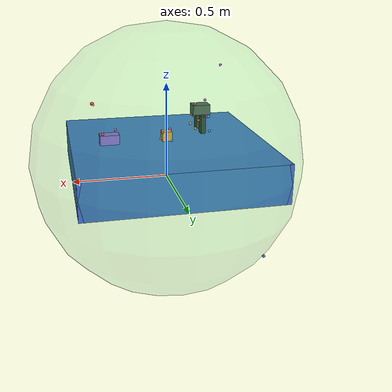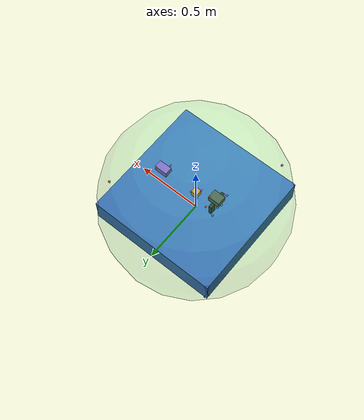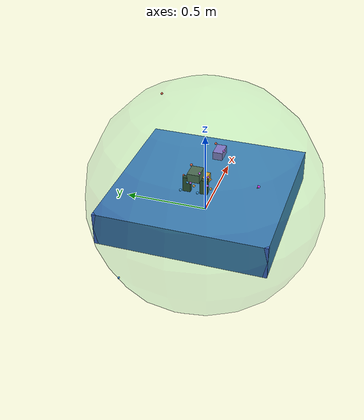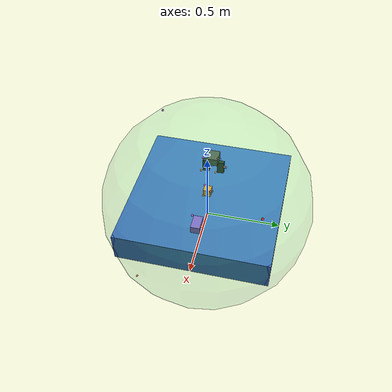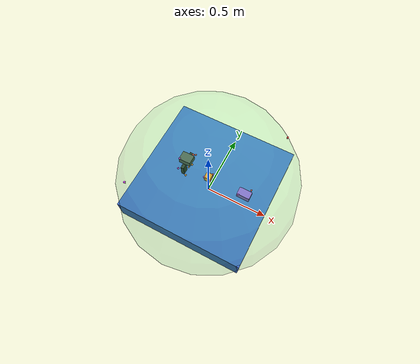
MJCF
<mujoco model="phase1_slide">
  <compiler angle="degree" autolimits="true"/>
  <option timestep="0.001" gravity="0 0 -9.81" integrator="implicitfast" solver="CG"
          cone="elliptic" impratio="12" tolerance="1e-7" iterations="200" noslip_iterations="2"/>
  <default>
    <joint damping="0.30" armature="0.001"/>
    <geom solref="0.025 1.2" solimp="0.94 0.997 0.0008" condim="3" friction="0.45 0.02 0.005"/>
    <default class="anchor_viz">
      <geom contype="0" conaffinity="0" group="1"/>
      <site size="0.007" group="2"/>
    </default>
  </default>

  <visual>
    <headlight diffuse="0.8 0.8 0.8" ambient="0.2 0.2 0.2" specular="0.25 0.25 0.25"/>
    <rgba haze="0.15 0.25 0.35 1"/>
  </visual>

  <worldbody>
    <light pos="0.5 -0.5 1.5" dir="-0.3 0.3 -1"/>
    <camera name="main" pos="1.1 -0.9 0.55" xyaxes="0.75 0.66 0 -0.28 0.32 0.90"/>

    <body name="base" pos="0 0 0.1">
      <geom name="base_geom" type="box" size="0.5 0.5 0.1" rgba="0.24 0.42 0.78 1"
            friction="0.45 0.02 0.005"/>
      <!-- R=0.714143 hx,hy,hz=0.5,0.5,0.1 -->
      <geom name="base_anchor_sphere" class="anchor_viz" type="sphere" size="0.714143"
            rgba="0.25 0.85 0.40 0.14"/>
      <site name="base_anchor_0" class="anchor_viz" pos="0.412311 0.412311 0.412311" rgba="1 0.25 0.25 1"/>
      <site name="base_anchor_1" class="anchor_viz" pos="0.412311 -0.412311 -0.412311" rgba="1 0.55 0.25 1"/>
      <site name="base_anchor_2" class="anchor_viz" pos="-0.412311 0.412311 -0.412311" rgba="0.25 0.55 1 1"/>
      <site name="base_anchor_3" class="anchor_viz" pos="-0.412311 -0.412311 0.412311" rgba="0.85 0.25 1 1"/>
      <geom name="base_anchor_edge_01" class="anchor_viz" type="capsule" size="0.003"
            fromto="0.412311 0.412311 0.412311 0.412311 -0.412311 -0.412311" rgba="0.95 0.95 0.2 0.55"/>
      <geom name="base_anchor_edge_02" class="anchor_viz" type="capsule" size="0.003"
            fromto="0.412311 0.412311 0.412311 -0.412311 0.412311 -0.412311" rgba="0.95 0.95 0.2 0.55"/>
      <geom name="base_anchor_edge_03" class="anchor_viz" type="capsule" size="0.003"
            fromto="0.412311 0.412311 0.412311 -0.412311 -0.412311 0.412311" rgba="0.95 0.95 0.2 0.55"/>
      <geom name="base_anchor_edge_12" class="anchor_viz" type="capsule" size="0.003"
            fromto="0.412311 -0.412311 -0.412311 -0.412311 0.412311 -0.412311" rgba="0.95 0.95 0.2 0.55"/>
      <geom name="base_anchor_edge_13" class="anchor_viz" type="capsule" size="0.003"
            fromto="0.412311 -0.412311 -0.412311 -0.412311 -0.412311 0.412311" rgba="0.95 0.95 0.2 0.55"/>
      <geom name="base_anchor_edge_23" class="anchor_viz" type="capsule" size="0.003"
            fromto="-0.412311 0.412311 -0.412311 -0.412311 -0.412311 0.412311" rgba="0.95 0.95 0.2 0.55"/>
    </body>

    <body name="cube" pos="0 0 0.225">
      <freejoint name="cube_free"/>
      <geom name="cube_geom" type="box" size="0.025 0.025 0.025" mass="0.12"
            rgba="0.92 0.55 0.15 1" friction="0.50 0.03 0.008"/>
      <geom name="cube_anchor_sphere" class="anchor_viz" type="sphere" size="0.043301"
            rgba="0.25 0.85 0.40 0.18"/>
      <site name="cube_anchor_0" class="anchor_viz" pos="0.025 0.025 0.025" rgba="1 0.25 0.25 1"/>
      <site name="cube_anchor_1" class="anchor_viz" pos="0.025 -0.025 -0.025" rgba="1 0.55 0.25 1"/>
      <site name="cube_anchor_2" class="anchor_viz" pos="-0.025 0.025 -0.025" rgba="0.25 0.55 1 1"/>
      <site name="cube_anchor_3" class="anchor_viz" pos="-0.025 -0.025 0.025" rgba="0.85 0.25 1 1"/>
      <geom name="cube_anchor_edge_01" class="anchor_viz" type="capsule" size="0.002"
            fromto="0.025 0.025 0.025 0.025 -0.025 -0.025" rgba="0.95 0.95 0.2 0.55"/>
      <geom name="cube_anchor_edge_02" class="anchor_viz" type="capsule" size="0.002"
            fromto="0.025 0.025 0.025 -0.025 0.025 -0.025" rgba="0.95 0.95 0.2 0.55"/>
      <geom name="cube_anchor_edge_03" class="anchor_viz" type="capsule" size="0.002"
            fromto="0.025 0.025 0.025 -0.025 -0.025 0.025" rgba="0.95 0.95 0.2 0.55"/>
      <geom name="cube_anchor_edge_12" class="anchor_viz" type="capsule" size="0.002"
            fromto="0.025 -0.025 -0.025 -0.025 0.025 -0.025" rgba="0.95 0.95 0.2 0.55"/>
      <geom name="cube_anchor_edge_13" class="anchor_viz" type="capsule" size="0.002"
            fromto="0.025 -0.025 -0.025 -0.025 -0.025 0.025" rgba="0.95 0.95 0.2 0.55"/>
      <geom name="cube_anchor_edge_23" class="anchor_viz" type="capsule" size="0.002"
            fromto="-0.025 0.025 -0.025 -0.025 -0.025 0.025" rgba="0.95 0.95 0.2 0.55"/>
    </body>

    <body name="gripper_palm" pos="-0.18 0 0.36">
      <joint name="gripper_slide_x" type="slide" axis="1 0 0" range="-0.05 0.35" damping="25"/>
      <joint name="gripper_slide_y" type="slide" axis="0 1 0" range="-0.15 0.15" damping="25"/>
      <joint name="gripper_slide_z" type="slide" axis="0 0 1" range="-0.10 0.05" damping="35"/>
      <geom name="gripper_palm_geom" type="box" size="0.045 0.035 0.025"
            rgba="0.30 0.30 0.30 1" friction="1.0 0.04 0.01"/>
      <geom name="gripper_palm_anchor_sphere" class="anchor_viz" type="sphere" size="0.062249"
            rgba="0.25 0.85 0.40 0.18"/>
      <site name="gripper_palm_anchor_0" class="anchor_viz" pos="0.035937 0.035937 0.035937" rgba="1 0.25 0.25 1"/>
      <site name="gripper_palm_anchor_1" class="anchor_viz" pos="0.035937 -0.035937 -0.035937" rgba="1 0.55 0.25 1"/>
      <site name="gripper_palm_anchor_2" class="anchor_viz" pos="-0.035937 0.035937 -0.035937" rgba="0.25 0.55 1 1"/>
      <site name="gripper_palm_anchor_3" class="anchor_viz" pos="-0.035937 -0.035937 0.035937" rgba="0.85 0.25 1 1"/>
      <geom name="gripper_palm_anchor_edge_01" class="anchor_viz" type="capsule" size="0.002"
            fromto="0.035937 0.035937 0.035937 0.035937 -0.035937 -0.035937" rgba="0.95 0.95 0.2 0.55"/>
      <geom name="gripper_palm_anchor_edge_02" class="anchor_viz" type="capsule" size="0.002"
            fromto="0.035937 0.035937 0.035937 -0.035937 0.035937 -0.035937" rgba="0.95 0.95 0.2 0.55"/>
      <geom name="gripper_palm_anchor_edge_03" class="anchor_viz" type="capsule" size="0.002"
            fromto="0.035937 0.035937 0.035937 -0.035937 -0.035937 0.035937" rgba="0.95 0.95 0.2 0.55"/>
      <geom name="gripper_palm_anchor_edge_12" class="anchor_viz" type="capsule" size="0.002"
            fromto="0.035937 -0.035937 -0.035937 -0.035937 0.035937 -0.035937" rgba="0.95 0.95 0.2 0.55"/>
      <geom name="gripper_palm_anchor_edge_13" class="anchor_viz" type="capsule" size="0.002"
            fromto="0.035937 -0.035937 -0.035937 -0.035937 -0.035937 0.035937" rgba="0.95 0.95 0.2 0.55"/>
      <geom name="gripper_palm_anchor_edge_23" class="anchor_viz" type="capsule" size="0.002"
            fromto="-0.035937 0.035937 -0.035937 -0.035937 -0.035937 0.035937" rgba="0.95 0.95 0.2 0.55"/>

      <body name="gripper_finger1" pos="0 0.050 -0.070">
        <joint name="gripper_finger1_slide" type="slide" axis="0 -1 0" range="0 0.042" damping="10"/>
        <geom name="gripper_finger1_geom" type="box" size="0.012 0.022 0.045"
              rgba="0.15 0.15 0.15 1" condim="4" friction="1.2 0.05 0.01"/>
        <geom name="gripper_finger1_anchor_sphere" class="anchor_viz" type="sphere" size="0.051507"
              rgba="0.25 0.85 0.40 0.18"/>
        <site name="gripper_finger1_anchor_0" class="anchor_viz" pos="0.029750 0.029750 0.029750" rgba="1 0.25 0.25 1"/>
        <site name="gripper_finger1_anchor_1" class="anchor_viz" pos="0.029750 -0.029750 -0.029750" rgba="1 0.55 0.25 1"/>
        <site name="gripper_finger1_anchor_2" class="anchor_viz" pos="-0.029750 0.029750 -0.029750" rgba="0.25 0.55 1 1"/>
        <site name="gripper_finger1_anchor_3" class="anchor_viz" pos="-0.029750 -0.029750 0.029750" rgba="0.85 0.25 1 1"/>
        <geom name="gripper_finger1_anchor_edge_01" class="anchor_viz" type="capsule" size="0.002"
              fromto="0.029750 0.029750 0.029750 0.029750 -0.029750 -0.029750" rgba="0.95 0.95 0.2 0.55"/>
        <geom name="gripper_finger1_anchor_edge_02" class="anchor_viz" type="capsule" size="0.002"
              fromto="0.029750 0.029750 0.029750 -0.029750 0.029750 -0.029750" rgba="0.95 0.95 0.2 0.55"/>
        <geom name="gripper_finger1_anchor_edge_03" class="anchor_viz" type="capsule" size="0.002"
              fromto="0.029750 0.029750 0.029750 -0.029750 -0.029750 0.029750" rgba="0.95 0.95 0.2 0.55"/>
        <geom name="gripper_finger1_anchor_edge_12" class="anchor_viz" type="capsule" size="0.002"
              fromto="0.029750 -0.029750 -0.029750 -0.029750 0.029750 -0.029750" rgba="0.95 0.95 0.2 0.55"/>
        <geom name="gripper_finger1_anchor_edge_13" class="anchor_viz" type="capsule" size="0.002"
              fromto="0.029750 -0.029750 -0.029750 -0.029750 -0.029750 0.029750" rgba="0.95 0.95 0.2 0.55"/>
        <geom name="gripper_finger1_anchor_edge_23" class="anchor_viz" type="capsule" size="0.002"
              fromto="-0.029750 0.029750 -0.029750 -0.029750 -0.029750 0.029750" rgba="0.95 0.95 0.2 0.55"/>
      </body>

      <body name="gripper_finger2" pos="0 -0.050 -0.070">
        <joint name="gripper_finger2_slide" type="slide" axis="0 1 0" range="0 0.042" damping="10"/>
        <geom name="gripper_finger2_geom" type="box" size="0.012 0.022 0.045"
              rgba="0.15 0.15 0.15 1" condim="4" friction="1.2 0.05 0.01"/>
        <geom name="gripper_finger2_anchor_sphere" class="anchor_viz" type="sphere" size="0.051507"
              rgba="0.25 0.85 0.40 0.18"/>
        <site name="gripper_finger2_anchor_0" class="anchor_viz" pos="0.029750 0.029750 0.029750" rgba="1 0.25 0.25 1"/>
        <site name="gripper_finger2_anchor_1" class="anchor_viz" pos="0.029750 -0.029750 -0.029750" rgba="1 0.55 0.25 1"/>
        <site name="gripper_finger2_anchor_2" class="anchor_viz" pos="-0.029750 0.029750 -0.029750" rgba="0.25 0.55 1 1"/>
        <site name="gripper_finger2_anchor_3" class="anchor_viz" pos="-0.029750 -0.029750 0.029750" rgba="0.85 0.25 1 1"/>
        <geom name="gripper_finger2_anchor_edge_01" class="anchor_viz" type="capsule" size="0.002"
              fromto="0.029750 0.029750 0.029750 0.029750 -0.029750 -0.029750" rgba="0.95 0.95 0.2 0.55"/>
        <geom name="gripper_finger2_anchor_edge_02" class="anchor_viz" type="capsule" size="0.002"
              fromto="0.029750 0.029750 0.029750 -0.029750 0.029750 -0.029750" rgba="0.95 0.95 0.2 0.55"/>
        <geom name="gripper_finger2_anchor_edge_03" class="anchor_viz" type="capsule" size="0.002"
              fromto="0.029750 0.029750 0.029750 -0.029750 -0.029750 0.029750" rgba="0.95 0.95 0.2 0.55"/>
        <geom name="gripper_finger2_anchor_edge_12" class="anchor_viz" type="capsule" size="0.002"
              fromto="0.029750 -0.029750 -0.029750 -0.029750 0.029750 -0.029750" rgba="0.95 0.95 0.2 0.55"/>
        <geom name="gripper_finger2_anchor_edge_13" class="anchor_viz" type="capsule" size="0.002"
              fromto="0.029750 -0.029750 -0.029750 -0.029750 -0.029750 0.029750" rgba="0.95 0.95 0.2 0.55"/>
        <geom name="gripper_finger2_anchor_edge_23" class="anchor_viz" type="capsule" size="0.002"
              fromto="-0.029750 0.029750 -0.029750 -0.029750 -0.029750 0.029750" rgba="0.95 0.95 0.2 0.55"/>
      </body>
    </body>

    <!-- steering：薄板 0.1m×0.06m×0.05m；质心 (0.3,0,0.225)；绕 Z 匀速转；与 base/cube/夹爪无碰撞 -->
    <body name="steering" pos="0.3 0 0.225">
      <joint name="steering_hinge" type="hinge" axis="0 0 1" limited="false" damping="0.05"
             armature="0.001"/>
      <geom name="steering_geom" type="box" size="0.05 0.03 0.025" mass="0.08"
            rgba="0.55 0.35 0.85 1" friction="0.45 0.02 0.005"
            contype="2" conaffinity="0"/>
      <!-- R=0.063482 hx,hy,hz=0.05,0.03,0.025 -->
      <geom name="steering_anchor_sphere" class="anchor_viz" type="sphere" size="0.063482"
            rgba="0.25 0.85 0.40 0.18"/>
      <site name="steering_anchor_0" class="anchor_viz" pos="0.036655 0.036655 0.036655" rgba="1 0.25 0.25 1"/>
      <site name="steering_anchor_1" class="anchor_viz" pos="0.036655 -0.036655 -0.036655" rgba="1 0.55 0.25 1"/>
      <site name="steering_anchor_2" class="anchor_viz" pos="-0.036655 0.036655 -0.036655" rgba="0.25 0.55 1 1"/>
      <site name="steering_anchor_3" class="anchor_viz" pos="-0.036655 -0.036655 0.036655" rgba="0.85 0.25 1 1"/>
      <geom name="steering_anchor_edge_01" class="anchor_viz" type="capsule" size="0.002"
            fromto="0.036655 0.036655 0.036655 0.036655 -0.036655 -0.036655" rgba="0.95 0.95 0.2 0.55"/>
      <geom name="steering_anchor_edge_02" class="anchor_viz" type="capsule" size="0.002"
            fromto="0.036655 0.036655 0.036655 -0.036655 0.036655 -0.036655" rgba="0.95 0.95 0.2 0.55"/>
      <geom name="steering_anchor_edge_03" class="anchor_viz" type="capsule" size="0.002"
            fromto="0.036655 0.036655 0.036655 -0.036655 -0.036655 0.036655" rgba="0.95 0.95 0.2 0.55"/>
      <geom name="steering_anchor_edge_12" class="anchor_viz" type="capsule" size="0.002"
            fromto="0.036655 -0.036655 -0.036655 -0.036655 0.036655 -0.036655" rgba="0.95 0.95 0.2 0.55"/>
      <geom name="steering_anchor_edge_13" class="anchor_viz" type="capsule" size="0.002"
            fromto="0.036655 -0.036655 -0.036655 -0.036655 -0.036655 0.036655" rgba="0.95 0.95 0.2 0.55"/>
      <geom name="steering_anchor_edge_23" class="anchor_viz" type="capsule" size="0.002"
            fromto="-0.036655 0.036655 -0.036655 -0.036655 -0.036655 0.036655" rgba="0.95 0.95 0.2 0.55"/>
    </body>
  </worldbody>

  <equality>
    <joint joint1="gripper_finger1_slide" joint2="gripper_finger2_slide"/>
  </equality>

  <tendon>
    <fixed name="gripper_grasp">
      <joint joint="gripper_finger1_slide" coef="0.35"/>
      <joint joint="gripper_finger2_slide" coef="0.35"/>
    </fixed>
  </tendon>

  <actuator>
    <position name="gripper_move_x" joint="gripper_slide_x" kp="180" dampratio="1"
              ctrlrange="-0.05 0.35"/>
    <position name="gripper_move_y" joint="gripper_slide_y" kp="700" dampratio="1"
              ctrlrange="-0.15 0.15"/>
    <position name="gripper_move_z" joint="gripper_slide_z" kp="850" dampratio="1"
              ctrlrange="-0.10 0.05"/>
    <position name="gripper_grasp_ctrl" tendon="gripper_grasp" kp="1250" dampratio="1"
              ctrlrange="0 0.042"/>
    <!-- 俯视 +Z 顺时针：角速度为负（rad/s） -->
    <velocity name="steering_spin" joint="steering_hinge" ctrlrange="-8 8" kv="15"/>
  </actuator>

</mujoco>
